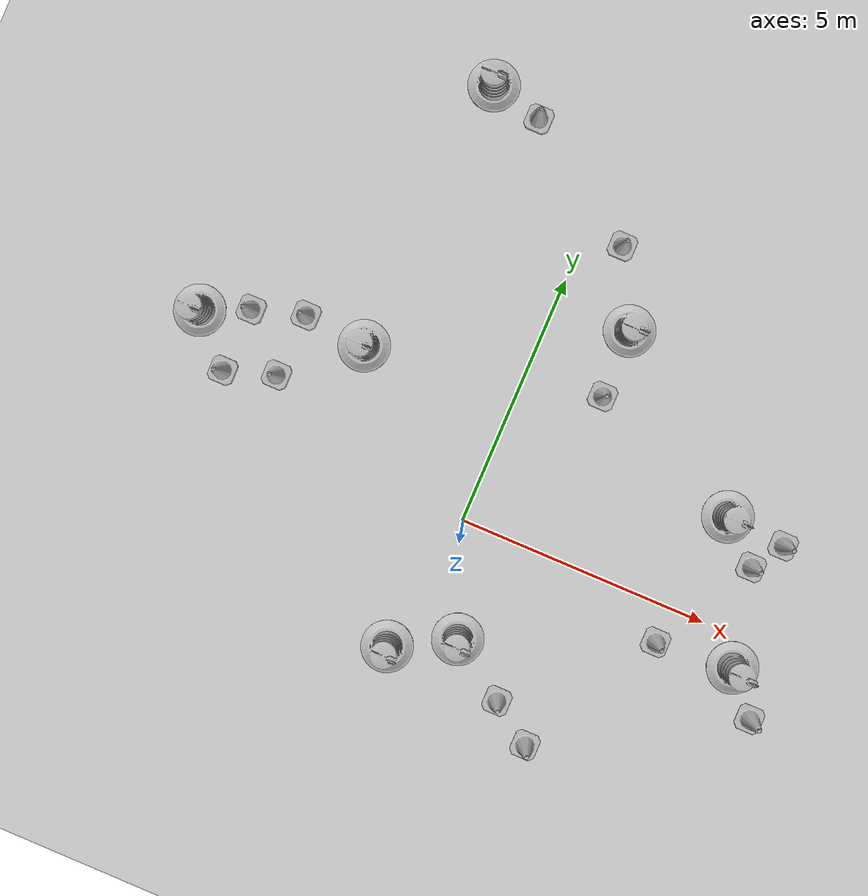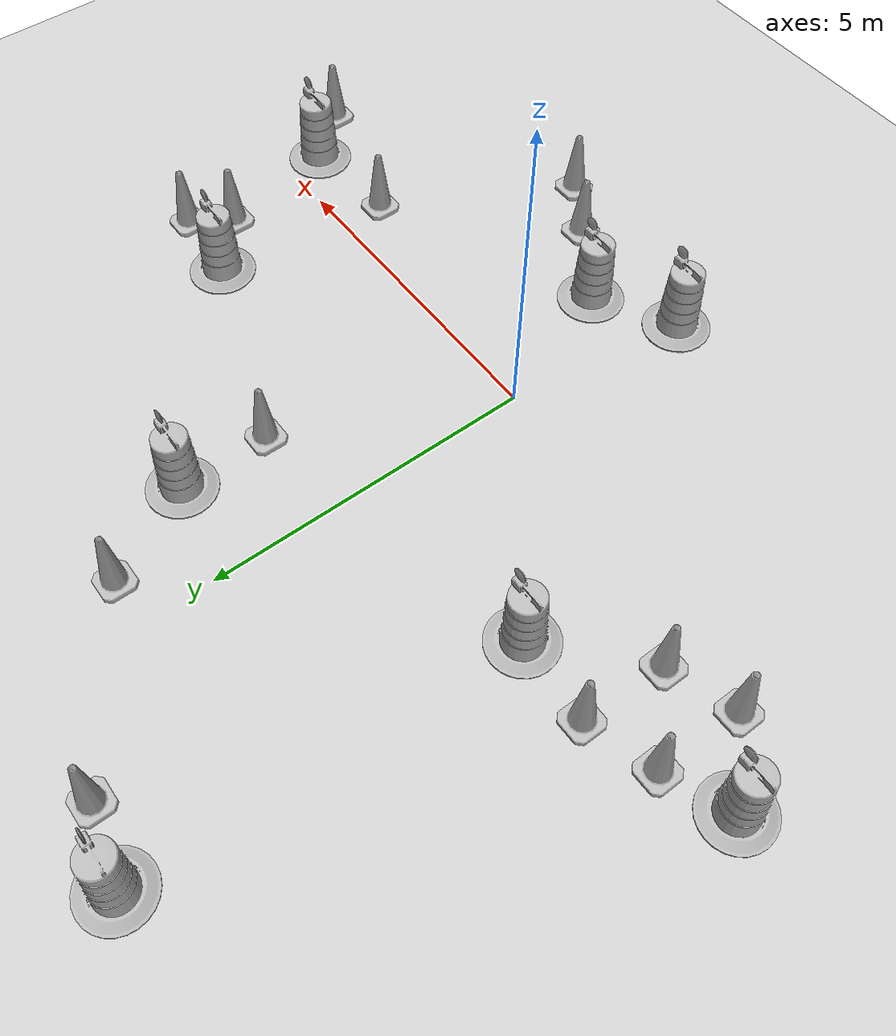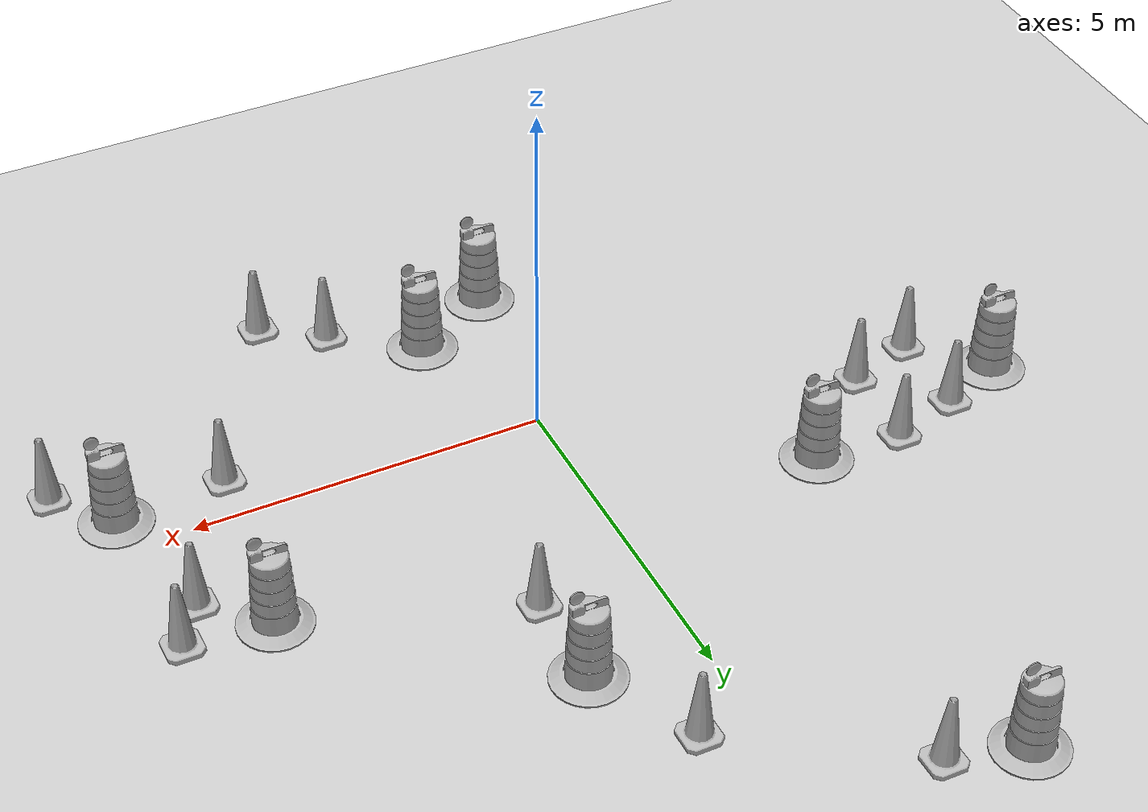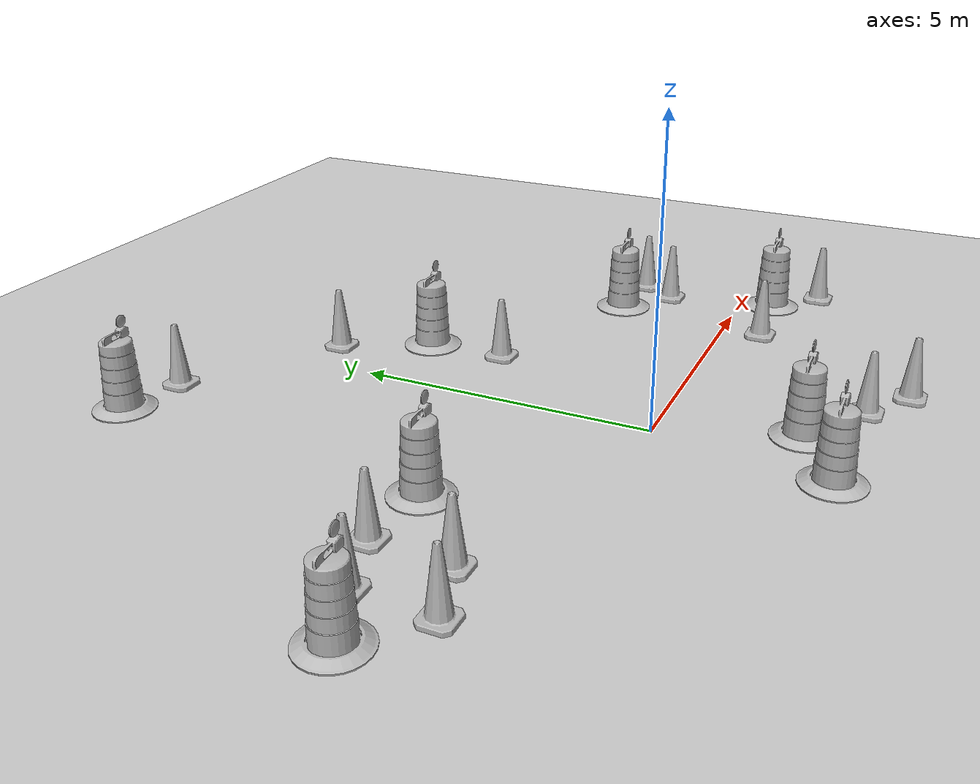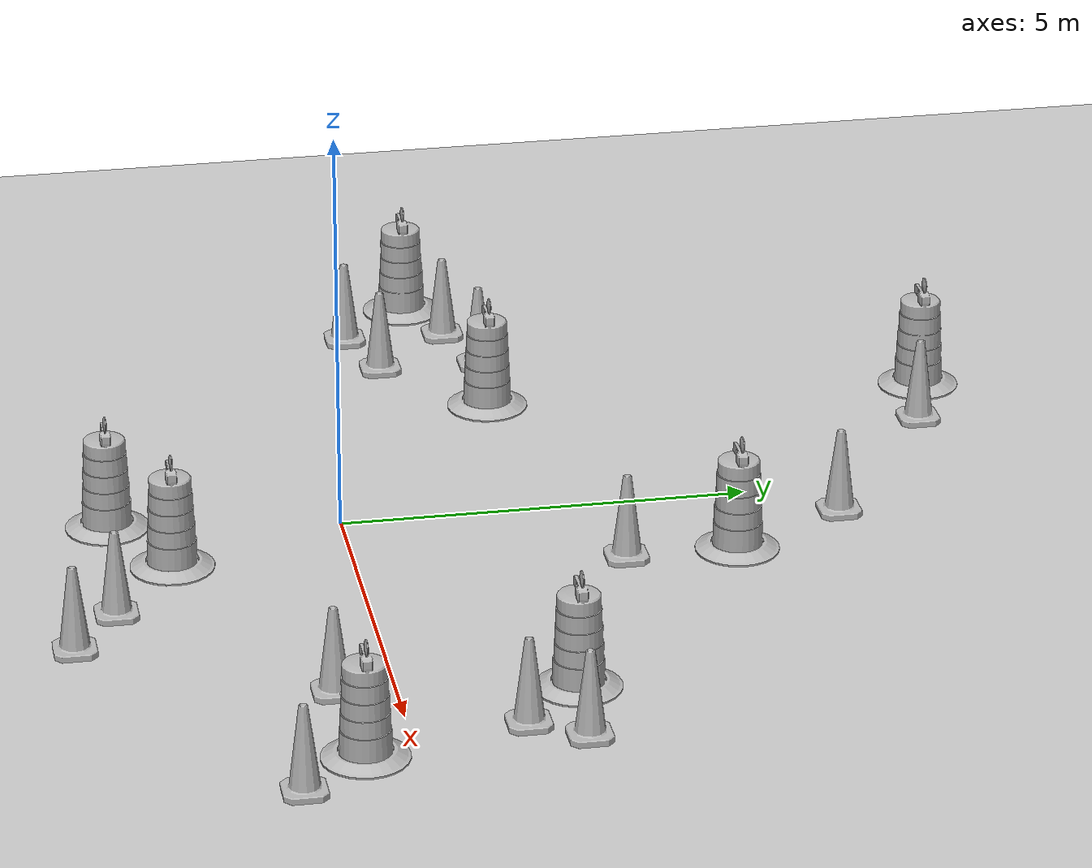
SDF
<sdf version="1.7">
 <world name="default">
  <light name="sun" type="directional">
   <pose>0 0 10 0 -0 0</pose>
   <diffuse>0.8 0.8 0.8 1</diffuse>
   <specular>0.2 0.2 0.2 1</specular>
   <attenuation>
    <range>1000</range>
    <constant>0.9</constant>
    <linear>0.01</linear>
    <quadratic>0.001</quadratic>
   </attenuation>
   <direction>-0.5 0.1 -0.9</direction>
   <spot><inner_angle>0</inner_angle><outer_angle>0</outer_angle><falloff>0</falloff></spot>
  </light>
  <model name="ground_plane">
   <static>1</static>
   <link name="link">
    <collision name="collision">
     <geometry><plane><normal>0 0 1</normal><size>100 100</size></plane></geometry>
     <surface><friction><ode><mu>100</mu><mu2>50</mu2></ode></friction></surface>
    </collision>
    <visual name="visual">
     <cast_shadows>0</cast_shadows>
     <geometry><plane><normal>0 0 1</normal><size>100 100</size></plane></geometry>
     <material>
      <script><uri>file://media/materials/scripts/gazebo.material</uri><name>Gazebo/Grey</name></script>
     </material>
    </visual>
   </link>
  </model>
  <gravity>0 0 -9.8</gravity>
  <magnetic_field>6e-06 2.3e-05 -4.2e-05</magnetic_field>
  <atmosphere type="adiabatic"/>
  <physics type="ode">
   <max_step_size>0.001</max_step_size>
   <real_time_factor>1</real_time_factor>
   <real_time_update_rate>1000</real_time_update_rate>
  </physics>
  <scene><ambient>0.4 0.4 0.4 1</ambient><background>0.7 0.7 0.7 1</background><shadows>1</shadows></scene>
  <audio><device>default</device></audio>
  <spherical_coordinates>
   <surface_model>EARTH_WGS84</surface_model>
   <latitude_deg>0</latitude_deg>
   <longitude_deg>0</longitude_deg>
   <elevation>0</elevation>
   <heading_deg>0</heading_deg>
  </spherical_coordinates>
  <model name="Construction Barrel">
   <link name="link">
    <inertial>
     <pose>0 0 0.4 0 -0 0</pose>
     <mass>500</mass>
     <inertia><ixx>51.2096</ixx><iyy>51.2096</iyy><izz>25</izz><ixy>0</ixy><ixz>0</ixz><iyz>0</iyz></inertia>
    </inertial>
    <collision name="collision">
     <geometry><mesh><uri>model://construction_barrel/meshes/construction_barrel.dae</uri></mesh></geometry>
    </collision>
    <visual name="visual">
     <geometry><mesh><uri>model://construction_barrel/meshes/construction_barrel.dae</uri></mesh></geometry>
    </visual>
   </link>
   <pose>0.801504 -2.13945 1e-06 3e-06 2e-06 -3.1e-05</pose>
  </model>
  <model name="Construction Cone">
   <link name="link">
    <collision name="collision">
     <geometry>
      <mesh><scale>10 10 10</scale><uri>model://construction_cone/meshes/construction_cone.dae</uri></mesh>
     </geometry>
    </collision>
    <visual name="visual">
     <geometry>
      <mesh><scale>10 10 10</scale><uri>model://construction_cone/meshes/construction_cone.dae</uri></mesh>
     </geometry>
    </visual>
    <inertial>
     <inertia><ixx>1</ixx><ixy>0</ixy><ixz>0</ixz><iyy>1</iyy><iyz>0</iyz><izz>1</izz></inertia>
     <mass>1</mass>
    </inertial>
   </link>
   <pose>1.95507 -2.92548 -0 0 -0 0</pose>
  </model>
  <model name="Construction Cone_0">
   <link name="link">
    <collision name="collision">
     <geometry>
      <mesh><scale>10 10 10</scale><uri>model://construction_cone/meshes/construction_cone.dae</uri></mesh>
     </geometry>
    </collision>
    <visual name="visual">
     <geometry>
      <mesh><scale>10 10 10</scale><uri>model://construction_cone/meshes/construction_cone.dae</uri></mesh>
     </geometry>
    </visual>
    <inertial>
     <inertia><ixx>1</ixx><ixy>0</ixy><ixz>0</ixz><iyy>1</iyy><iyz>0</iyz><izz>1</izz></inertia>
     <mass>1</mass>
    </inertial>
   </link>
   <pose>0.739618 6.03098 0 -0 -0 -0</pose>
  </model>
  <model name="Construction Barrel_0">
   <link name="link">
    <inertial>
     <pose>0 0 0.4 0 -0 0</pose>
     <mass>500</mass>
     <inertia><ixx>51.2096</ixx><iyy>51.2096</iyy><izz>25</izz><ixy>0</ixy><ixz>0</ixz><iyz>0</iyz></inertia>
    </inertial>
    <collision name="collision">
     <geometry><mesh><uri>model://construction_barrel/meshes/construction_barrel.dae</uri></mesh></geometry>
    </collision>
    <visual name="visual">
     <geometry><mesh><uri>model://construction_barrel/meshes/construction_barrel.dae</uri></mesh></geometry>
    </visual>
   </link>
   <pose>1.50642 4.59218 1e-06 3e-06 2e-06 -2.7e-05</pose>
  </model>
  <model name="Construction Cone_1">
   <link name="link">
    <collision name="collision">
     <geometry>
      <mesh><scale>10 10 10</scale><uri>model://construction_cone/meshes/construction_cone.dae</uri></mesh>
     </geometry>
    </collision>
    <visual name="visual">
     <geometry>
      <mesh><scale>10 10 10</scale><uri>model://construction_cone/meshes/construction_cone.dae</uri></mesh>
     </geometry>
    </visual>
    <inertial>
     <inertia><ixx>1</ixx><ixy>0</ixy><ixz>0</ixz><iyy>1</iyy><iyz>0</iyz><izz>1</izz></inertia>
     <mass>1</mass>
    </inertial>
   </link>
   <pose>5.83077 1.96261 -0 0 -0 0</pose>
  </model>
  <model name="Construction Barrel_1">
   <link name="link">
    <inertial>
     <pose>0 0 0.4 0 -0 0</pose>
     <mass>500</mass>
     <inertia><ixx>51.2096</ixx><iyy>51.2096</iyy><izz>25</izz><ixy>0</ixy><ixz>0</ixz><iyz>0</iyz></inertia>
    </inertial>
    <collision name="collision">
     <geometry><mesh><uri>model://construction_barrel/meshes/construction_barrel.dae</uri></mesh></geometry>
    </collision>
    <visual name="visual">
     <geometry><mesh><uri>model://construction_barrel/meshes/construction_barrel.dae</uri></mesh></geometry>
    </visual>
   </link>
   <pose>-6.22968 1.72056 1e-06 3e-06 2e-06 -2.5e-05</pose>
  </model>
  <model name="Construction Cone_2">
   <link name="link">
    <collision name="collision">
     <geometry>
      <mesh><scale>10 10 10</scale><uri>model://construction_cone/meshes/construction_cone.dae</uri></mesh>
     </geometry>
    </collision>
    <visual name="visual">
     <geometry>
      <mesh><scale>10 10 10</scale><uri>model://construction_cone/meshes/construction_cone.dae</uri></mesh>
     </geometry>
    </visual>
    <inertial>
     <inertia><ixx>1</ixx><ixy>0</ixy><ixz>0</ixz><iyy>1</iyy><iyz>0</iyz><izz>1</izz></inertia>
     <mass>1</mass>
    </inertial>
   </link>
   <pose>-5.32228 2.12339 -1e-05 -1e-06 0 0</pose>
  </model>
  <model name="Construction Cone_3">
   <link name="link">
    <collision name="collision">
     <geometry>
      <mesh><scale>10 10 10</scale><uri>model://construction_cone/meshes/construction_cone.dae</uri></mesh>
     </geometry>
    </collision>
    <visual name="visual">
     <geometry>
      <mesh><scale>10 10 10</scale><uri>model://construction_cone/meshes/construction_cone.dae</uri></mesh>
     </geometry>
    </visual>
    <inertial>
     <inertia><ixx>1</ixx><ixy>0</ixy><ixz>0</ixz><iyy>1</iyy><iyz>0</iyz><izz>1</izz></inertia>
     <mass>1</mass>
    </inertial>
   </link>
   <pose>-4.38275 1.1563 -8e-06 0 1e-06 0</pose>
  </model>
  <model name="Construction Cone_4">
   <link name="link">
    <collision name="collision">
     <geometry>
      <mesh><scale>10 10 10</scale><uri>model://construction_cone/meshes/construction_cone.dae</uri></mesh>
     </geometry>
    </collision>
    <visual name="visual">
     <geometry>
      <mesh><scale>10 10 10</scale><uri>model://construction_cone/meshes/construction_cone.dae</uri></mesh>
     </geometry>
    </visual>
    <inertial>
     <inertia><ixx>1</ixx><ixy>0</ixy><ixz>0</ixz><iyy>1</iyy><iyz>0</iyz><izz>1</izz></inertia>
     <mass>1</mass>
    </inertial>
   </link>
   <pose>-4.31177 2.43058 -0 0 -0 0</pose>
  </model>
  <model name="Construction Barrel_2">
   <link name="link">
    <inertial>
     <pose>0 0 0.4 0 -0 0</pose>
     <mass>500</mass>
     <inertia><ixx>51.2096</ixx><iyy>51.2096</iyy><izz>25</izz><ixy>0</ixy><ixz>0</ixz><iyz>0</iyz></inertia>
    </inertial>
    <collision name="collision">
     <geometry><mesh><uri>model://construction_barrel/meshes/construction_barrel.dae</uri></mesh></geometry>
    </collision>
    <visual name="visual">
     <geometry><mesh><uri>model://construction_barrel/meshes/construction_barrel.dae</uri></mesh></geometry>
    </visual>
   </link>
   <pose>-0.390682 -2.79584 1e-06 3e-06 2e-06 -2e-05</pose>
  </model>
  <model name="Construction Cone_5">
   <link name="link">
    <collision name="collision">
     <geometry>
      <mesh><scale>10 10 10</scale><uri>model://construction_cone/meshes/construction_cone.dae</uri></mesh>
     </geometry>
    </collision>
    <visual name="visual">
     <geometry>
      <mesh><scale>10 10 10</scale><uri>model://construction_cone/meshes/construction_cone.dae</uri></mesh>
     </geometry>
    </visual>
    <inertial>
     <inertia><ixx>1</ixx><ixy>0</ixy><ixz>0</ixz><iyy>1</iyy><iyz>0</iyz><izz>1</izz></inertia>
     <mass>1</mass>
    </inertial>
   </link>
   <pose>2.78297 -3.49309 -2e-06 -3e-06 -1e-06 -0</pose>
  </model>
  <model name="Construction Cone_6">
   <link name="link">
    <collision name="collision">
     <geometry>
      <mesh><scale>10 10 10</scale><uri>model://construction_cone/meshes/construction_cone.dae</uri></mesh>
     </geometry>
    </collision>
    <visual name="visual">
     <geometry>
      <mesh><scale>10 10 10</scale><uri>model://construction_cone/meshes/construction_cone.dae</uri></mesh>
     </geometry>
    </visual>
    <inertial>
     <inertia><ixx>1</ixx><ixy>0</ixy><ixz>0</ixz><iyy>1</iyy><iyz>0</iyz><izz>1</izz></inertia>
     <mass>1</mass>
    </inertial>
   </link>
   <pose>-5.366 0.83538 -4e-06 4e-06 -1e-06 0</pose>
  </model>
  <model name="Construction Cone_7">
   <link name="link">
    <collision name="collision">
     <geometry>
      <mesh><scale>10 10 10</scale><uri>model://construction_cone/meshes/construction_cone.dae</uri></mesh>
     </geometry>
    </collision>
    <visual name="visual">
     <geometry>
      <mesh><scale>10 10 10</scale><uri>model://construction_cone/meshes/construction_cone.dae</uri></mesh>
     </geometry>
    </visual>
    <inertial>
     <inertia><ixx>1</ixx><ixy>0</ixy><ixz>0</ixz><iyy>1</iyy><iyz>0</iyz><izz>1</izz></inertia>
     <mass>1</mass>
    </inertial>
   </link>
   <pose>1.5223 3.23407 -0 0 -1e-06 0</pose>
  </model>
  <model name="Construction Cone_8">
   <link name="link">
    <collision name="collision">
     <geometry>
      <mesh><scale>10 10 10</scale><uri>model://construction_cone/meshes/construction_cone.dae</uri></mesh>
     </geometry>
    </collision>
    <visual name="visual">
     <geometry>
      <mesh><scale>10 10 10</scale><uri>model://construction_cone/meshes/construction_cone.dae</uri></mesh>
     </geometry>
    </visual>
    <inertial>
     <inertia><ixx>1</ixx><ixy>0</ixy><ixz>0</ixz><iyy>1</iyy><iyz>0</iyz><izz>1</izz></inertia>
     <mass>1</mass>
    </inertial>
   </link>
   <pose>5.42922 1.34438 -0 0 -0 0</pose>
  </model>
  <model name="Construction Barrel_3">
   <link name="link">
    <inertial>
     <pose>0 0 0.4 0 -0 0</pose>
     <mass>500</mass>
     <inertia><ixx>51.2096</ixx><iyy>51.2096</iyy><izz>25</izz><ixy>0</ixy><ixz>0</ixz><iyz>0</iyz></inertia>
    </inertial>
    <collision name="collision">
     <geometry><mesh><uri>model://construction_barrel/meshes/construction_barrel.dae</uri></mesh></geometry>
    </collision>
    <visual name="visual">
     <geometry><mesh><uri>model://construction_barrel/meshes/construction_barrel.dae</uri></mesh></geometry>
    </visual>
   </link>
   <pose>4.64034 2.05825 -0 1e-06 -1e-06 -1.2e-05</pose>
  </model>
  <model name="Construction Barrel_4">
   <link name="link">
    <inertial>
     <pose>0 0 0.4 0 -0 0</pose>
     <mass>500</mass>
     <inertia><ixx>51.2096</ixx><iyy>51.2096</iyy><izz>25</izz><ixy>0</ixy><ixz>0</ixz><iyz>0</iyz></inertia>
    </inertial>
    <collision name="collision">
     <geometry><mesh><uri>model://construction_barrel/meshes/construction_barrel.dae</uri></mesh></geometry>
    </collision>
    <visual name="visual">
     <geometry><mesh><uri>model://construction_barrel/meshes/construction_barrel.dae</uri></mesh></geometry>
    </visual>
   </link>
   <pose>5.86245 -0.571005 -1e-06 0 5e-06 -1e-05</pose>
  </model>
  <model name="Construction Cone_9">
   <link name="link">
    <collision name="collision">
     <geometry>
      <mesh><scale>10 10 10</scale><uri>model://construction_cone/meshes/construction_cone.dae</uri></mesh>
     </geometry>
    </collision>
    <visual name="visual">
     <geometry>
      <mesh><scale>10 10 10</scale><uri>model://construction_cone/meshes/construction_cone.dae</uri></mesh>
     </geometry>
    </visual>
    <inertial>
     <inertia><ixx>1</ixx><ixy>0</ixy><ixz>0</ixz><iyy>1</iyy><iyz>0</iyz><izz>1</izz></inertia>
     <mass>1</mass>
    </inertial>
   </link>
   <pose>6.53999 -1.34462 -0 0 -0 0</pose>
  </model>
  <model name="Construction Cone_10">
   <link name="link">
    <collision name="collision">
     <geometry>
      <mesh><scale>10 10 10</scale><uri>model://construction_cone/meshes/construction_cone.dae</uri></mesh>
     </geometry>
    </collision>
    <visual name="visual">
     <geometry>
      <mesh><scale>10 10 10</scale><uri>model://construction_cone/meshes/construction_cone.dae</uri></mesh>
     </geometry>
    </visual>
    <inertial>
     <inertia><ixx>1</ixx><ixy>0</ixy><ixz>0</ixz><iyy>1</iyy><iyz>0</iyz><izz>1</izz></inertia>
     <mass>1</mass>
    </inertial>
   </link>
   <pose>4.3092 -0.696821 -0 0 -1e-06 0</pose>
  </model>
  <model name="Construction Cone_11">
   <link name="link">
    <collision name="collision">
     <geometry>
      <mesh><scale>10 10 10</scale><uri>model://construction_cone/meshes/construction_cone.dae</uri></mesh>
     </geometry>
    </collision>
    <visual name="visual">
     <geometry>
      <mesh><scale>10 10 10</scale><uri>model://construction_cone/meshes/construction_cone.dae</uri></mesh>
     </geometry>
    </visual>
    <inertial>
     <inertia><ixx>1</ixx><ixy>0</ixy><ixz>0</ixz><iyy>1</iyy><iyz>0</iyz><izz>1</izz></inertia>
     <mass>1</mass>
    </inertial>
   </link>
   <pose>-1.68589 7.63924 -4e-06 4e-06 -1e-06 0</pose>
  </model>
  <model name="Construction Barrel_5">
   <link name="link">
    <inertial>
     <pose>0 0 0.4 0 -0 0</pose>
     <mass>500</mass>
     <inertia><ixx>51.2096</ixx><iyy>51.2096</iyy><izz>25</izz><ixy>0</ixy><ixz>0</ixz><iyz>0</iyz></inertia>
    </inertial>
    <collision name="collision">
     <geometry><mesh><uri>model://construction_barrel/meshes/construction_barrel.dae</uri></mesh></geometry>
    </collision>
    <visual name="visual">
     <geometry><mesh><uri>model://construction_barrel/meshes/construction_barrel.dae</uri></mesh></geometry>
    </visual>
   </link>
   <pose>-2.73297 7.89847 0 0 0 -3e-06</pose>
  </model>
  <model name="Construction Barrel_6">
   <link name="link">
    <inertial>
     <pose>0 0 0.4 0 -0 0</pose>
     <mass>500</mass>
     <inertia><ixx>51.2096</ixx><iyy>51.2096</iyy><izz>25</izz><ixy>0</ixy><ixz>0</ixz><iyz>0</iyz></inertia>
    </inertial>
    <collision name="collision">
     <geometry><mesh><uri>model://construction_barrel/meshes/construction_barrel.dae</uri></mesh></geometry>
    </collision>
    <visual name="visual">
     <geometry><mesh><uri>model://construction_barrel/meshes/construction_barrel.dae</uri></mesh></geometry>
    </visual>
   </link>
   <pose>-3.06011 2.33196 -1e-06 3e-06 -2e-06 -2e-06</pose>
  </model>
 </world>
</sdf>
